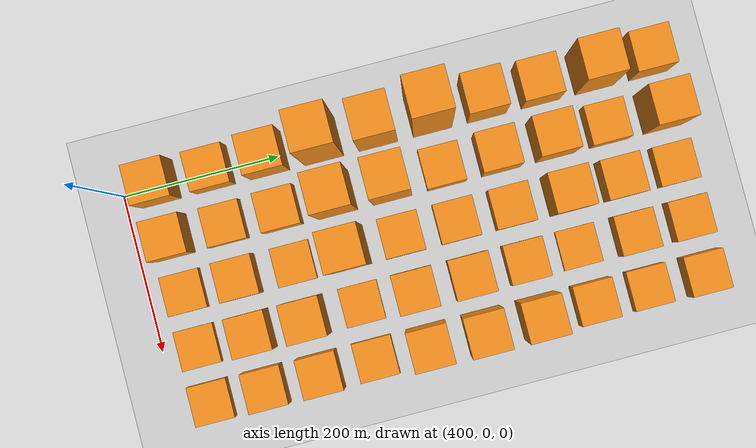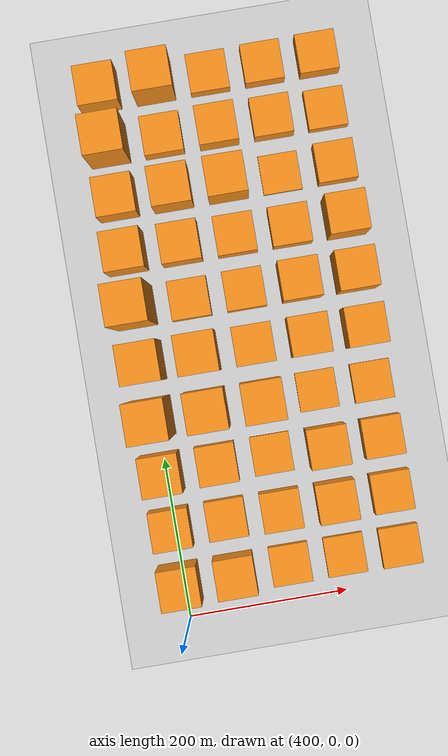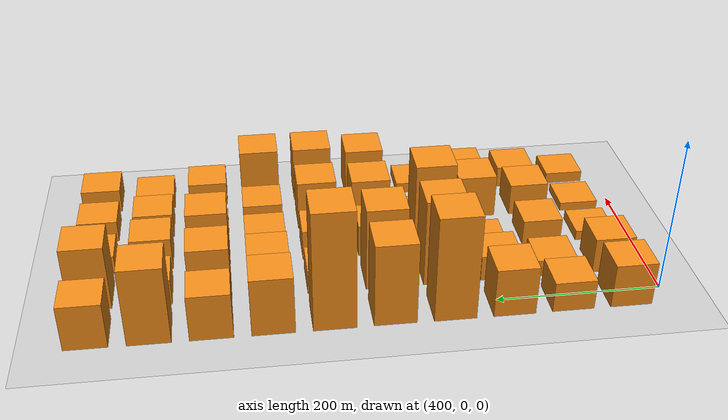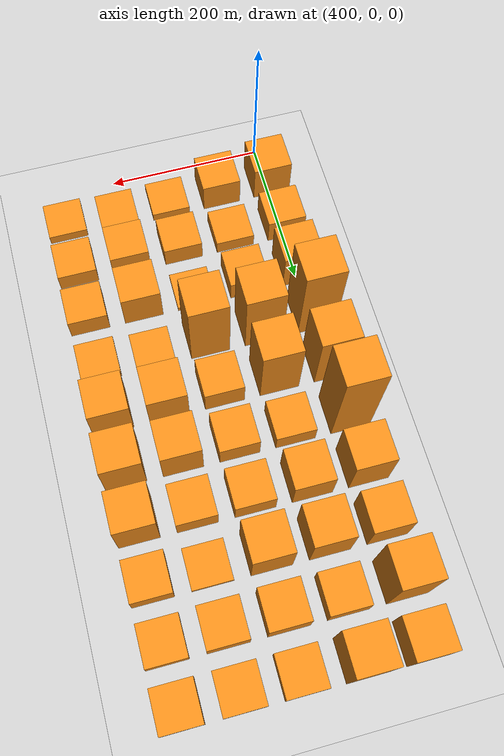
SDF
<sdf version="1.6">
 <world name="default">
  <model name="ground_plane">
   <static>1</static>
   <link name="link">
    <collision name="collision">
     <geometry><plane><normal>0 0 1</normal><size>2000 2000</size></plane></geometry>
     <surface>
      <contact><collide_bitmask>65535</collide_bitmask></contact>
      <friction><ode><mu>100</mu><mu2>50</mu2></ode></friction>
     </surface>
    </collision>
    <visual name="visual">
     <cast_shadows>0</cast_shadows>
     <geometry><plane><normal>0 0 1</normal><size>500 300</size></plane></geometry>
     <material>
      <script><uri>file://media/materials/scripts/gazebo.material</uri><name>Gazebo/Grey</name></script>
     </material>
    </visual>
   </link>
  </model>
  <model name="unit_box_005">
   <pose>395.00    45.00    29.00 0 0 0</pose>
   <static>1</static>
   <link name="link">
    <inertial>
     <mass>5000</mass>
     <inertia><ixx>200</ixx><ixy>0</ixy><ixz>0</ixz><iyy>200</iyy><iyz>0</iyz><izz>200</izz></inertia>
    </inertial>
    <collision name="collision"><geometry><box><size>50 50 58</size></box></geometry></collision>
    <visual name="visual">
     <geometry><box><size>50 50 58</size></box></geometry>
     <material>
      <script><name>Gazebo/Orange</name><uri>file://media/materials/scripts/gazebo.material</uri></script>
     </material>
    </visual>
   </link>
  </model>
  <model name="unit_box_006">
   <pose>465.00    45.00    23.00 0 0 0</pose>
   <static>1</static>
   <link name="link">
    <inertial>
     <mass>5000</mass>
     <inertia><ixx>200</ixx><ixy>0</ixy><ixz>0</ixz><iyy>200</iyy><iyz>0</iyz><izz>200</izz></inertia>
    </inertial>
    <collision name="collision"><geometry><box><size>50 50 47</size></box></geometry></collision>
    <visual name="visual">
     <geometry><box><size>50 50 47</size></box></geometry>
     <material>
      <script><name>Gazebo/Orange</name><uri>file://media/materials/scripts/gazebo.material</uri></script>
     </material>
    </visual>
   </link>
  </model>
  <model name="unit_box_007">
   <pose>535.00    45.00     6.00 0 0 0</pose>
   <static>1</static>
   <link name="link">
    <inertial>
     <mass>5000</mass>
     <inertia><ixx>200</ixx><ixy>0</ixy><ixz>0</ixz><iyy>200</iyy><iyz>0</iyz><izz>200</izz></inertia>
    </inertial>
    <collision name="collision"><geometry><box><size>50 50 13</size></box></geometry></collision>
    <visual name="visual">
     <geometry><box><size>50 50 13</size></box></geometry>
     <material>
      <script><name>Gazebo/Orange</name><uri>file://media/materials/scripts/gazebo.material</uri></script>
     </material>
    </visual>
   </link>
  </model>
  <model name="unit_box_008">
   <pose>605.00    45.00     5.00 0 0 0</pose>
   <static>1</static>
   <link name="link">
    <inertial>
     <mass>5000</mass>
     <inertia><ixx>200</ixx><ixy>0</ixy><ixz>0</ixz><iyy>200</iyy><iyz>0</iyz><izz>200</izz></inertia>
    </inertial>
    <collision name="collision"><geometry><box><size>50 50 11</size></box></geometry></collision>
    <visual name="visual">
     <geometry><box><size>50 50 11</size></box></geometry>
     <material>
      <script><name>Gazebo/Orange</name><uri>file://media/materials/scripts/gazebo.material</uri></script>
     </material>
    </visual>
   </link>
  </model>
  <model name="unit_box_009">
   <pose>675.00    45.00     7.00 0 0 0</pose>
   <static>1</static>
   <link name="link">
    <inertial>
     <mass>5000</mass>
     <inertia><ixx>200</ixx><ixy>0</ixy><ixz>0</ixz><iyy>200</iyy><iyz>0</iyz><izz>200</izz></inertia>
    </inertial>
    <collision name="collision"><geometry><box><size>50 50 15</size></box></geometry></collision>
    <visual name="visual">
     <geometry><box><size>50 50 15</size></box></geometry>
     <material>
      <script><name>Gazebo/Orange</name><uri>file://media/materials/scripts/gazebo.material</uri></script>
     </material>
    </visual>
   </link>
  </model>
  <model name="unit_box_015">
   <pose>395.00   115.00    20.00 0 0 0</pose>
   <static>1</static>
   <link name="link">
    <inertial>
     <mass>5000</mass>
     <inertia><ixx>200</ixx><ixy>0</ixy><ixz>0</ixz><iyy>200</iyy><iyz>0</iyz><izz>200</izz></inertia>
    </inertial>
    <collision name="collision"><geometry><box><size>50 50 40</size></box></geometry></collision>
    <visual name="visual">
     <geometry><box><size>50 50 40</size></box></geometry>
     <material>
      <script><name>Gazebo/Orange</name><uri>file://media/materials/scripts/gazebo.material</uri></script>
     </material>
    </visual>
   </link>
  </model>
  <model name="unit_box_016">
   <pose>465.00   115.00    11.00 0 0 0</pose>
   <static>1</static>
   <link name="link">
    <inertial>
     <mass>5000</mass>
     <inertia><ixx>200</ixx><ixy>0</ixy><ixz>0</ixz><iyy>200</iyy><iyz>0</iyz><izz>200</izz></inertia>
    </inertial>
    <collision name="collision"><geometry><box><size>50 50 22</size></box></geometry></collision>
    <visual name="visual">
     <geometry><box><size>50 50 22</size></box></geometry>
     <material>
      <script><name>Gazebo/Orange</name><uri>file://media/materials/scripts/gazebo.material</uri></script>
     </material>
    </visual>
   </link>
  </model>
  <model name="unit_box_017">
   <pose>535.00   115.00    16.00 0 0 0</pose>
   <static>1</static>
   <link name="link">
    <inertial>
     <mass>5000</mass>
     <inertia><ixx>200</ixx><ixy>0</ixy><ixz>0</ixz><iyy>200</iyy><iyz>0</iyz><izz>200</izz></inertia>
    </inertial>
    <collision name="collision"><geometry><box><size>50 50 33</size></box></geometry></collision>
    <visual name="visual">
     <geometry><box><size>50 50 33</size></box></geometry>
     <material>
      <script><name>Gazebo/Orange</name><uri>file://media/materials/scripts/gazebo.material</uri></script>
     </material>
    </visual>
   </link>
  </model>
  <model name="unit_box_018">
   <pose>605.00   115.00    21.00 0 0 0</pose>
   <static>1</static>
   <link name="link">
    <inertial>
     <mass>5000</mass>
     <inertia><ixx>200</ixx><ixy>0</ixy><ixz>0</ixz><iyy>200</iyy><iyz>0</iyz><izz>200</izz></inertia>
    </inertial>
    <collision name="collision"><geometry><box><size>50 50 43</size></box></geometry></collision>
    <visual name="visual">
     <geometry><box><size>50 50 43</size></box></geometry>
     <material>
      <script><name>Gazebo/Orange</name><uri>file://media/materials/scripts/gazebo.material</uri></script>
     </material>
    </visual>
   </link>
  </model>
  <model name="unit_box_019">
   <pose>675.00   115.00    14.00 0 0 0</pose>
   <static>1</static>
   <link name="link">
    <inertial>
     <mass>5000</mass>
     <inertia><ixx>200</ixx><ixy>0</ixy><ixz>0</ixz><iyy>200</iyy><iyz>0</iyz><izz>200</izz></inertia>
    </inertial>
    <collision name="collision"><geometry><box><size>50 50 29</size></box></geometry></collision>
    <visual name="visual">
     <geometry><box><size>50 50 29</size></box></geometry>
     <material>
      <script><name>Gazebo/Orange</name><uri>file://media/materials/scripts/gazebo.material</uri></script>
     </material>
    </visual>
   </link>
  </model>
  <model name="unit_box_025">
   <pose>395.00   185.00    32.00 0 0 0</pose>
   <static>1</static>
   <link name="link">
    <inertial>
     <mass>5000</mass>
     <inertia><ixx>200</ixx><ixy>0</ixy><ixz>0</ixz><iyy>200</iyy><iyz>0</iyz><izz>200</izz></inertia>
    </inertial>
    <collision name="collision"><geometry><box><size>50 50 65</size></box></geometry></collision>
    <visual name="visual">
     <geometry><box><size>50 50 65</size></box></geometry>
     <material>
      <script><name>Gazebo/Orange</name><uri>file://media/materials/scripts/gazebo.material</uri></script>
     </material>
    </visual>
   </link>
  </model>
  <model name="unit_box_026">
   <pose>465.00   185.00    17.00 0 0 0</pose>
   <static>1</static>
   <link name="link">
    <inertial>
     <mass>5000</mass>
     <inertia><ixx>200</ixx><ixy>0</ixy><ixz>0</ixz><iyy>200</iyy><iyz>0</iyz><izz>200</izz></inertia>
    </inertial>
    <collision name="collision"><geometry><box><size>50 50 34</size></box></geometry></collision>
    <visual name="visual">
     <geometry><box><size>50 50 34</size></box></geometry>
     <material>
      <script><name>Gazebo/Orange</name><uri>file://media/materials/scripts/gazebo.material</uri></script>
     </material>
    </visual>
   </link>
  </model>
  <model name="unit_box_027">
   <pose>535.00   185.00     3.00 0 0 0</pose>
   <static>1</static>
   <link name="link">
    <inertial>
     <mass>5000</mass>
     <inertia><ixx>200</ixx><ixy>0</ixy><ixz>0</ixz><iyy>200</iyy><iyz>0</iyz><izz>200</izz></inertia>
    </inertial>
    <collision name="collision"><geometry><box><size>50 50 7</size></box></geometry></collision>
    <visual name="visual">
     <geometry><box><size>50 50 7</size></box></geometry>
     <material>
      <script><name>Gazebo/Orange</name><uri>file://media/materials/scripts/gazebo.material</uri></script>
     </material>
    </visual>
   </link>
  </model>
  <model name="unit_box_028">
   <pose>605.00   185.00    29.00 0 0 0</pose>
   <static>1</static>
   <link name="link">
    <inertial>
     <mass>5000</mass>
     <inertia><ixx>200</ixx><ixy>0</ixy><ixz>0</ixz><iyy>200</iyy><iyz>0</iyz><izz>200</izz></inertia>
    </inertial>
    <collision name="collision"><geometry><box><size>50 50 59</size></box></geometry></collision>
    <visual name="visual">
     <geometry><box><size>50 50 59</size></box></geometry>
     <material>
      <script><name>Gazebo/Orange</name><uri>file://media/materials/scripts/gazebo.material</uri></script>
     </material>
    </visual>
   </link>
  </model>
  <model name="unit_box_029">
   <pose>675.00   185.00    17.00 0 0 0</pose>
   <static>1</static>
   <link name="link">
    <inertial>
     <mass>5000</mass>
     <inertia><ixx>200</ixx><ixy>0</ixy><ixz>0</ixz><iyy>200</iyy><iyz>0</iyz><izz>200</izz></inertia>
    </inertial>
    <collision name="collision"><geometry><box><size>50 50 35</size></box></geometry></collision>
    <visual name="visual">
     <geometry><box><size>50 50 35</size></box></geometry>
     <material>
      <script><name>Gazebo/Orange</name><uri>file://media/materials/scripts/gazebo.material</uri></script>
     </material>
    </visual>
   </link>
  </model>
  <model name="unit_box_035">
   <pose>395.00   255.00    70.00 0 0 0</pose>
   <static>1</static>
   <link name="link">
    <inertial>
     <mass>5000</mass>
     <inertia><ixx>200</ixx><ixy>0</ixy><ixz>0</ixz><iyy>200</iyy><iyz>0</iyz><izz>200</izz></inertia>
    </inertial>
    <collision name="collision"><geometry><box><size>50 50 141</size></box></geometry></collision>
    <visual name="visual">
     <geometry><box><size>50 50 141</size></box></geometry>
     <material>
      <script><name>Gazebo/Orange</name><uri>file://media/materials/scripts/gazebo.material</uri></script>
     </material>
    </visual>
   </link>
  </model>
  <model name="unit_box_036">
   <pose>465.00   255.00    58.00 0 0 0</pose>
   <static>1</static>
   <link name="link">
    <inertial>
     <mass>5000</mass>
     <inertia><ixx>200</ixx><ixy>0</ixy><ixz>0</ixz><iyy>200</iyy><iyz>0</iyz><izz>200</izz></inertia>
    </inertial>
    <collision name="collision"><geometry><box><size>50 50 117</size></box></geometry></collision>
    <visual name="visual">
     <geometry><box><size>50 50 117</size></box></geometry>
     <material>
      <script><name>Gazebo/Orange</name><uri>file://media/materials/scripts/gazebo.material</uri></script>
     </material>
    </visual>
   </link>
  </model>
  <model name="unit_box_037">
   <pose>535.00   255.00    61.00 0 0 0</pose>
   <static>1</static>
   <link name="link">
    <inertial>
     <mass>5000</mass>
     <inertia><ixx>200</ixx><ixy>0</ixy><ixz>0</ixz><iyy>200</iyy><iyz>0</iyz><izz>200</izz></inertia>
    </inertial>
    <collision name="collision"><geometry><box><size>50 50 122</size></box></geometry></collision>
    <visual name="visual">
     <geometry><box><size>50 50 122</size></box></geometry>
     <material>
      <script><name>Gazebo/Orange</name><uri>file://media/materials/scripts/gazebo.material</uri></script>
     </material>
    </visual>
   </link>
  </model>
  <model name="unit_box_038">
   <pose>605.00   255.00     3.00 0 0 0</pose>
   <static>1</static>
   <link name="link">
    <inertial>
     <mass>5000</mass>
     <inertia><ixx>200</ixx><ixy>0</ixy><ixz>0</ixz><iyy>200</iyy><iyz>0</iyz><izz>200</izz></inertia>
    </inertial>
    <collision name="collision"><geometry><box><size>50 50 6</size></box></geometry></collision>
    <visual name="visual">
     <geometry><box><size>50 50 6</size></box></geometry>
     <material>
      <script><name>Gazebo/Orange</name><uri>file://media/materials/scripts/gazebo.material</uri></script>
     </material>
    </visual>
   </link>
  </model>
  <model name="unit_box_039">
   <pose>675.00   255.00     7.00 0 0 0</pose>
   <static>1</static>
   <link name="link">
    <inertial>
     <mass>5000</mass>
     <inertia><ixx>200</ixx><ixy>0</ixy><ixz>0</ixz><iyy>200</iyy><iyz>0</iyz><izz>200</izz></inertia>
    </inertial>
    <collision name="collision"><geometry><box><size>50 50 14</size></box></geometry></collision>
    <visual name="visual">
     <geometry><box><size>50 50 14</size></box></geometry>
     <material>
      <script><name>Gazebo/Orange</name><uri>file://media/materials/scripts/gazebo.material</uri></script>
     </material>
    </visual>
   </link>
  </model>
  <model name="unit_box_045">
   <pose>395.00   325.00    55.00 0 0 0</pose>
   <static>1</static>
   <link name="link">
    <inertial>
     <mass>5000</mass>
     <inertia><ixx>200</ixx><ixy>0</ixy><ixz>0</ixz><iyy>200</iyy><iyz>0</iyz><izz>200</izz></inertia>
    </inertial>
    <collision name="collision"><geometry><box><size>50 50 110</size></box></geometry></collision>
    <visual name="visual">
     <geometry><box><size>50 50 110</size></box></geometry>
     <material>
      <script><name>Gazebo/Orange</name><uri>file://media/materials/scripts/gazebo.material</uri></script>
     </material>
    </visual>
   </link>
  </model>
  <model name="unit_box_046">
   <pose>465.00   325.00    55.00 0 0 0</pose>
   <static>1</static>
   <link name="link">
    <inertial>
     <mass>5000</mass>
     <inertia><ixx>200</ixx><ixy>0</ixy><ixz>0</ixz><iyy>200</iyy><iyz>0</iyz><izz>200</izz></inertia>
    </inertial>
    <collision name="collision"><geometry><box><size>50 50 111</size></box></geometry></collision>
    <visual name="visual">
     <geometry><box><size>50 50 111</size></box></geometry>
     <material>
      <script><name>Gazebo/Orange</name><uri>file://media/materials/scripts/gazebo.material</uri></script>
     </material>
    </visual>
   </link>
  </model>
  <model name="unit_box_047">
   <pose>535.00   325.00    21.00 0 0 0</pose>
   <static>1</static>
   <link name="link">
    <inertial>
     <mass>5000</mass>
     <inertia><ixx>200</ixx><ixy>0</ixy><ixz>0</ixz><iyy>200</iyy><iyz>0</iyz><izz>200</izz></inertia>
    </inertial>
    <collision name="collision"><geometry><box><size>50 50 43</size></box></geometry></collision>
    <visual name="visual">
     <geometry><box><size>50 50 43</size></box></geometry>
     <material>
      <script><name>Gazebo/Orange</name><uri>file://media/materials/scripts/gazebo.material</uri></script>
     </material>
    </visual>
   </link>
  </model>
  <model name="unit_box_048">
   <pose>605.00   325.00    32.00 0 0 0</pose>
   <static>1</static>
   <link name="link">
    <inertial>
     <mass>5000</mass>
     <inertia><ixx>200</ixx><ixy>0</ixy><ixz>0</ixz><iyy>200</iyy><iyz>0</iyz><izz>200</izz></inertia>
    </inertial>
    <collision name="collision"><geometry><box><size>50 50 64</size></box></geometry></collision>
    <visual name="visual">
     <geometry><box><size>50 50 64</size></box></geometry>
     <material>
      <script><name>Gazebo/Orange</name><uri>file://media/materials/scripts/gazebo.material</uri></script>
     </material>
    </visual>
   </link>
  </model>
  <model name="unit_box_049">
   <pose>675.00   325.00    34.00 0 0 0</pose>
   <static>1</static>
   <link name="link">
    <inertial>
     <mass>5000</mass>
     <inertia><ixx>200</ixx><ixy>0</ixy><ixz>0</ixz><iyy>200</iyy><iyz>0</iyz><izz>200</izz></inertia>
    </inertial>
    <collision name="collision"><geometry><box><size>50 50 68</size></box></geometry></collision>
    <visual name="visual">
     <geometry><box><size>50 50 68</size></box></geometry>
     <material>
      <script><name>Gazebo/Orange</name><uri>file://media/materials/scripts/gazebo.material</uri></script>
     </material>
    </visual>
   </link>
  </model>
  <model name="unit_box_055">
   <pose>395.00   395.00    79.00 0 0 0</pose>
   <static>1</static>
   <link name="link">
    <inertial>
     <mass>5000</mass>
     <inertia><ixx>200</ixx><ixy>0</ixy><ixz>0</ixz><iyy>200</iyy><iyz>0</iyz><izz>200</izz></inertia>
    </inertial>
    <collision name="collision"><geometry><box><size>50 50 159</size></box></geometry></collision>
    <visual name="visual">
     <geometry><box><size>50 50 159</size></box></geometry>
     <material>
      <script><name>Gazebo/Orange</name><uri>file://media/materials/scripts/gazebo.material</uri></script>
     </material>
    </visual>
   </link>
  </model>
  <model name="unit_box_056">
   <pose>465.00   395.00    16.00 0 0 0</pose>
   <static>1</static>
   <link name="link">
    <inertial>
     <mass>5000</mass>
     <inertia><ixx>200</ixx><ixy>0</ixy><ixz>0</ixz><iyy>200</iyy><iyz>0</iyz><izz>200</izz></inertia>
    </inertial>
    <collision name="collision"><geometry><box><size>50 50 33</size></box></geometry></collision>
    <visual name="visual">
     <geometry><box><size>50 50 33</size></box></geometry>
     <material>
      <script><name>Gazebo/Orange</name><uri>file://media/materials/scripts/gazebo.material</uri></script>
     </material>
    </visual>
   </link>
  </model>
  <model name="unit_box_057">
   <pose>535.00   395.00    20.00 0 0 0</pose>
   <static>1</static>
   <link name="link">
    <inertial>
     <mass>5000</mass>
     <inertia><ixx>200</ixx><ixy>0</ixy><ixz>0</ixz><iyy>200</iyy><iyz>0</iyz><izz>200</izz></inertia>
    </inertial>
    <collision name="collision"><geometry><box><size>50 50 41</size></box></geometry></collision>
    <visual name="visual">
     <geometry><box><size>50 50 41</size></box></geometry>
     <material>
      <script><name>Gazebo/Orange</name><uri>file://media/materials/scripts/gazebo.material</uri></script>
     </material>
    </visual>
   </link>
  </model>
  <model name="unit_box_058">
   <pose>605.00   395.00    33.00 0 0 0</pose>
   <static>1</static>
   <link name="link">
    <inertial>
     <mass>5000</mass>
     <inertia><ixx>200</ixx><ixy>0</ixy><ixz>0</ixz><iyy>200</iyy><iyz>0</iyz><izz>200</izz></inertia>
    </inertial>
    <collision name="collision"><geometry><box><size>50 50 67</size></box></geometry></collision>
    <visual name="visual">
     <geometry><box><size>50 50 67</size></box></geometry>
     <material>
      <script><name>Gazebo/Orange</name><uri>file://media/materials/scripts/gazebo.material</uri></script>
     </material>
    </visual>
   </link>
  </model>
  <model name="unit_box_059">
   <pose>675.00   395.00    38.00 0 0 0</pose>
   <static>1</static>
   <link name="link">
    <inertial>
     <mass>5000</mass>
     <inertia><ixx>200</ixx><ixy>0</ixy><ixz>0</ixz><iyy>200</iyy><iyz>0</iyz><izz>200</izz></inertia>
    </inertial>
    <collision name="collision"><geometry><box><size>50 50 76</size></box></geometry></collision>
    <visual name="visual">
     <geometry><box><size>50 50 76</size></box></geometry>
     <material>
      <script><name>Gazebo/Orange</name><uri>file://media/materials/scripts/gazebo.material</uri></script>
     </material>
    </visual>
   </link>
  </model>
  <model name="unit_box_065">
   <pose>395.00   465.00    38.00 0 0 0</pose>
   <static>1</static>
   <link name="link">
    <inertial>
     <mass>5000</mass>
     <inertia><ixx>200</ixx><ixy>0</ixy><ixz>0</ixz><iyy>200</iyy><iyz>0</iyz><izz>200</izz></inertia>
    </inertial>
    <collision name="collision"><geometry><box><size>50 50 77</size></box></geometry></collision>
    <visual name="visual">
     <geometry><box><size>50 50 77</size></box></geometry>
     <material>
      <script><name>Gazebo/Orange</name><uri>file://media/materials/scripts/gazebo.material</uri></script>
     </material>
    </visual>
   </link>
  </model>
  <model name="unit_box_066">
   <pose>465.00   465.00    29.00 0 0 0</pose>
   <static>1</static>
   <link name="link">
    <inertial>
     <mass>5000</mass>
     <inertia><ixx>200</ixx><ixy>0</ixy><ixz>0</ixz><iyy>200</iyy><iyz>0</iyz><izz>200</izz></inertia>
    </inertial>
    <collision name="collision"><geometry><box><size>50 50 58</size></box></geometry></collision>
    <visual name="visual">
     <geometry><box><size>50 50 58</size></box></geometry>
     <material>
      <script><name>Gazebo/Orange</name><uri>file://media/materials/scripts/gazebo.material</uri></script>
     </material>
    </visual>
   </link>
  </model>
  <model name="unit_box_067">
   <pose>535.00   465.00    20.00 0 0 0</pose>
   <static>1</static>
   <link name="link">
    <inertial>
     <mass>5000</mass>
     <inertia><ixx>200</ixx><ixy>0</ixy><ixz>0</ixz><iyy>200</iyy><iyz>0</iyz><izz>200</izz></inertia>
    </inertial>
    <collision name="collision"><geometry><box><size>50 50 40</size></box></geometry></collision>
    <visual name="visual">
     <geometry><box><size>50 50 40</size></box></geometry>
     <material>
      <script><name>Gazebo/Orange</name><uri>file://media/materials/scripts/gazebo.material</uri></script>
     </material>
    </visual>
   </link>
  </model>
  <model name="unit_box_068">
   <pose>605.00   465.00    19.00 0 0 0</pose>
   <static>1</static>
   <link name="link">
    <inertial>
     <mass>5000</mass>
     <inertia><ixx>200</ixx><ixy>0</ixy><ixz>0</ixz><iyy>200</iyy><iyz>0</iyz><izz>200</izz></inertia>
    </inertial>
    <collision name="collision"><geometry><box><size>50 50 38</size></box></geometry></collision>
    <visual name="visual">
     <geometry><box><size>50 50 38</size></box></geometry>
     <material>
      <script><name>Gazebo/Orange</name><uri>file://media/materials/scripts/gazebo.material</uri></script>
     </material>
    </visual>
   </link>
  </model>
  <model name="unit_box_069">
   <pose>675.00   465.00    38.00 0 0 0</pose>
   <static>1</static>
   <link name="link">
    <inertial>
     <mass>5000</mass>
     <inertia><ixx>200</ixx><ixy>0</ixy><ixz>0</ixz><iyy>200</iyy><iyz>0</iyz><izz>200</izz></inertia>
    </inertial>
    <collision name="collision"><geometry><box><size>50 50 76</size></box></geometry></collision>
    <visual name="visual">
     <geometry><box><size>50 50 76</size></box></geometry>
     <material>
      <script><name>Gazebo/Orange</name><uri>file://media/materials/scripts/gazebo.material</uri></script>
     </material>
    </visual>
   </link>
  </model>
  <model name="unit_box_075">
   <pose>395.00   535.00    30.00 0 0 0</pose>
   <static>1</static>
   <link name="link">
    <inertial>
     <mass>5000</mass>
     <inertia><ixx>200</ixx><ixy>0</ixy><ixz>0</ixz><iyy>200</iyy><iyz>0</iyz><izz>200</izz></inertia>
    </inertial>
    <collision name="collision"><geometry><box><size>50 50 61</size></box></geometry></collision>
    <visual name="visual">
     <geometry><box><size>50 50 61</size></box></geometry>
     <material>
      <script><name>Gazebo/Orange</name><uri>file://media/materials/scripts/gazebo.material</uri></script>
     </material>
    </visual>
   </link>
  </model>
  <model name="unit_box_076">
   <pose>465.00   535.00    36.00 0 0 0</pose>
   <static>1</static>
   <link name="link">
    <inertial>
     <mass>5000</mass>
     <inertia><ixx>200</ixx><ixy>0</ixy><ixz>0</ixz><iyy>200</iyy><iyz>0</iyz><izz>200</izz></inertia>
    </inertial>
    <collision name="collision"><geometry><box><size>50 50 73</size></box></geometry></collision>
    <visual name="visual">
     <geometry><box><size>50 50 73</size></box></geometry>
     <material>
      <script><name>Gazebo/Orange</name><uri>file://media/materials/scripts/gazebo.material</uri></script>
     </material>
    </visual>
   </link>
  </model>
  <model name="unit_box_077">
   <pose>535.00   535.00    38.00 0 0 0</pose>
   <static>1</static>
   <link name="link">
    <inertial>
     <mass>5000</mass>
     <inertia><ixx>200</ixx><ixy>0</ixy><ixz>0</ixz><iyy>200</iyy><iyz>0</iyz><izz>200</izz></inertia>
    </inertial>
    <collision name="collision"><geometry><box><size>50 50 76</size></box></geometry></collision>
    <visual name="visual">
     <geometry><box><size>50 50 76</size></box></geometry>
     <material>
      <script><name>Gazebo/Orange</name><uri>file://media/materials/scripts/gazebo.material</uri></script>
     </material>
    </visual>
   </link>
  </model>
  <model name="unit_box_078">
   <pose>605.00   535.00     3.00 0 0 0</pose>
   <static>1</static>
   <link name="link">
    <inertial>
     <mass>5000</mass>
     <inertia><ixx>200</ixx><ixy>0</ixy><ixz>0</ixz><iyy>200</iyy><iyz>0</iyz><izz>200</izz></inertia>
    </inertial>
    <collision name="collision"><geometry><box><size>50 50 6</size></box></geometry></collision>
    <visual name="visual">
     <geometry><box><size>50 50 6</size></box></geometry>
     <material>
      <script><name>Gazebo/Orange</name><uri>file://media/materials/scripts/gazebo.material</uri></script>
     </material>
    </visual>
   </link>
  </model>
  <model name="unit_box_079">
   <pose>675.00   535.00    16.00 0 0 0</pose>
   <static>1</static>
   <link name="link">
    <inertial>
     <mass>5000</mass>
     <inertia><ixx>200</ixx><ixy>0</ixy><ixz>0</ixz><iyy>200</iyy><iyz>0</iyz><izz>200</izz></inertia>
    </inertial>
    <collision name="collision"><geometry><box><size>50 50 33</size></box></geometry></collision>
    <visual name="visual">
     <geometry><box><size>50 50 33</size></box></geometry>
     <material>
      <script><name>Gazebo/Orange</name><uri>file://media/materials/scripts/gazebo.material</uri></script>
     </material>
    </visual>
   </link>
  </model>
  <model name="unit_box_085">
   <pose>395.00   605.00    51.00 0 0 0</pose>
   <static>1</static>
   <link name="link">
    <inertial>
     <mass>5000</mass>
     <inertia><ixx>200</ixx><ixy>0</ixy><ixz>0</ixz><iyy>200</iyy><iyz>0</iyz><izz>200</izz></inertia>
    </inertial>
    <collision name="collision"><geometry><box><size>50 50 103</size></box></geometry></collision>
    <visual name="visual">
     <geometry><box><size>50 50 103</size></box></geometry>
     <material>
      <script><name>Gazebo/Orange</name><uri>file://media/materials/scripts/gazebo.material</uri></script>
     </material>
    </visual>
   </link>
  </model>
  <model name="unit_box_086">
   <pose>465.00   605.00    17.00 0 0 0</pose>
   <static>1</static>
   <link name="link">
    <inertial>
     <mass>5000</mass>
     <inertia><ixx>200</ixx><ixy>0</ixy><ixz>0</ixz><iyy>200</iyy><iyz>0</iyz><izz>200</izz></inertia>
    </inertial>
    <collision name="collision"><geometry><box><size>50 50 35</size></box></geometry></collision>
    <visual name="visual">
     <geometry><box><size>50 50 35</size></box></geometry>
     <material>
      <script><name>Gazebo/Orange</name><uri>file://media/materials/scripts/gazebo.material</uri></script>
     </material>
    </visual>
   </link>
  </model>
  <model name="unit_box_087">
   <pose>535.00   605.00    22.00 0 0 0</pose>
   <static>1</static>
   <link name="link">
    <inertial>
     <mass>5000</mass>
     <inertia><ixx>200</ixx><ixy>0</ixy><ixz>0</ixz><iyy>200</iyy><iyz>0</iyz><izz>200</izz></inertia>
    </inertial>
    <collision name="collision"><geometry><box><size>50 50 44</size></box></geometry></collision>
    <visual name="visual">
     <geometry><box><size>50 50 44</size></box></geometry>
     <material>
      <script><name>Gazebo/Orange</name><uri>file://media/materials/scripts/gazebo.material</uri></script>
     </material>
    </visual>
   </link>
  </model>
  <model name="unit_box_088">
   <pose>605.00   605.00    17.00 0 0 0</pose>
   <static>1</static>
   <link name="link">
    <inertial>
     <mass>5000</mass>
     <inertia><ixx>200</ixx><ixy>0</ixy><ixz>0</ixz><iyy>200</iyy><iyz>0</iyz><izz>200</izz></inertia>
    </inertial>
    <collision name="collision"><geometry><box><size>50 50 34</size></box></geometry></collision>
    <visual name="visual">
     <geometry><box><size>50 50 34</size></box></geometry>
     <material>
      <script><name>Gazebo/Orange</name><uri>file://media/materials/scripts/gazebo.material</uri></script>
     </material>
    </visual>
   </link>
  </model>
  <model name="unit_box_089">
   <pose>675.00   605.00    10.00 0 0 0</pose>
   <static>1</static>
   <link name="link">
    <inertial>
     <mass>5000</mass>
     <inertia><ixx>200</ixx><ixy>0</ixy><ixz>0</ixz><iyy>200</iyy><iyz>0</iyz><izz>200</izz></inertia>
    </inertial>
    <collision name="collision"><geometry><box><size>50 50 21</size></box></geometry></collision>
    <visual name="visual">
     <geometry><box><size>50 50 21</size></box></geometry>
     <material>
      <script><name>Gazebo/Orange</name><uri>file://media/materials/scripts/gazebo.material</uri></script>
     </material>
    </visual>
   </link>
  </model>
  <model name="unit_box_095">
   <pose>395.00   675.00    30.00 0 0 0</pose>
   <static>1</static>
   <link name="link">
    <inertial>
     <mass>5000</mass>
     <inertia><ixx>200</ixx><ixy>0</ixy><ixz>0</ixz><iyy>200</iyy><iyz>0</iyz><izz>200</izz></inertia>
    </inertial>
    <collision name="collision"><geometry><box><size>50 50 60</size></box></geometry></collision>
    <visual name="visual">
     <geometry><box><size>50 50 60</size></box></geometry>
     <material>
      <script><name>Gazebo/Orange</name><uri>file://media/materials/scripts/gazebo.material</uri></script>
     </material>
    </visual>
   </link>
  </model>
  <model name="unit_box_096">
   <pose>465.00   675.00    43.00 0 0 0</pose>
   <static>1</static>
   <link name="link">
    <inertial>
     <mass>5000</mass>
     <inertia><ixx>200</ixx><ixy>0</ixy><ixz>0</ixz><iyy>200</iyy><iyz>0</iyz><izz>200</izz></inertia>
    </inertial>
    <collision name="collision"><geometry><box><size>50 50 86</size></box></geometry></collision>
    <visual name="visual">
     <geometry><box><size>50 50 86</size></box></geometry>
     <material>
      <script><name>Gazebo/Orange</name><uri>file://media/materials/scripts/gazebo.material</uri></script>
     </material>
    </visual>
   </link>
  </model>
  <model name="unit_box_097">
   <pose>535.00   675.00    12.00 0 0 0</pose>
   <static>1</static>
   <link name="link">
    <inertial>
     <mass>5000</mass>
     <inertia><ixx>200</ixx><ixy>0</ixy><ixz>0</ixz><iyy>200</iyy><iyz>0</iyz><izz>200</izz></inertia>
    </inertial>
    <collision name="collision"><geometry><box><size>50 50 25</size></box></geometry></collision>
    <visual name="visual">
     <geometry><box><size>50 50 25</size></box></geometry>
     <material>
      <script><name>Gazebo/Orange</name><uri>file://media/materials/scripts/gazebo.material</uri></script>
     </material>
    </visual>
   </link>
  </model>
  <model name="unit_box_098">
   <pose>605.00   675.00    14.00 0 0 0</pose>
   <static>1</static>
   <link name="link">
    <inertial>
     <mass>5000</mass>
     <inertia><ixx>200</ixx><ixy>0</ixy><ixz>0</ixz><iyy>200</iyy><iyz>0</iyz><izz>200</izz></inertia>
    </inertial>
    <collision name="collision"><geometry><box><size>50 50 29</size></box></geometry></collision>
    <visual name="visual">
     <geometry><box><size>50 50 29</size></box></geometry>
     <material>
      <script><name>Gazebo/Orange</name><uri>file://media/materials/scripts/gazebo.material</uri></script>
     </material>
    </visual>
   </link>
  </model>
  <model name="unit_box_099">
   <pose>675.00   675.00    16.00 0 0 0</pose>
   <static>1</static>
   <link name="link">
    <inertial>
     <mass>5000</mass>
     <inertia><ixx>200</ixx><ixy>0</ixy><ixz>0</ixz><iyy>200</iyy><iyz>0</iyz><izz>200</izz></inertia>
    </inertial>
    <collision name="collision"><geometry><box><size>50 50 32</size></box></geometry></collision>
    <visual name="visual">
     <geometry><box><size>50 50 32</size></box></geometry>
     <material>
      <script><name>Gazebo/Orange</name><uri>file://media/materials/scripts/gazebo.material</uri></script>
     </material>
    </visual>
   </link>
  </model>
 </world>
</sdf>
